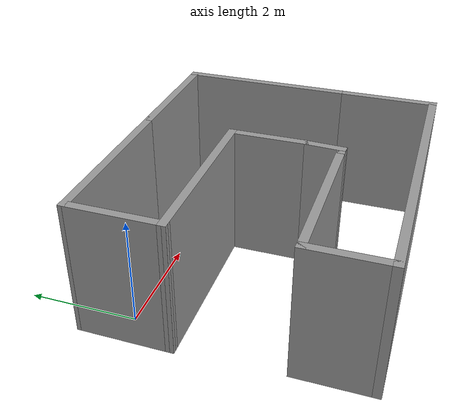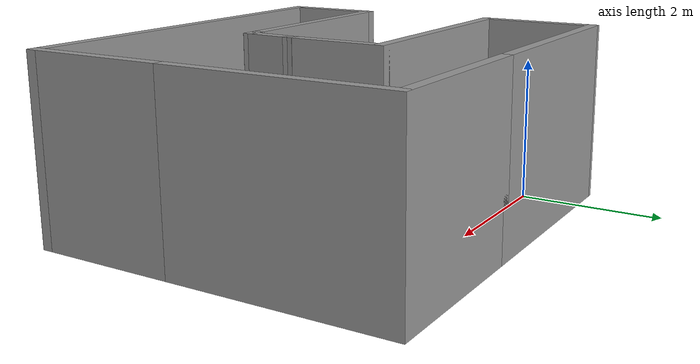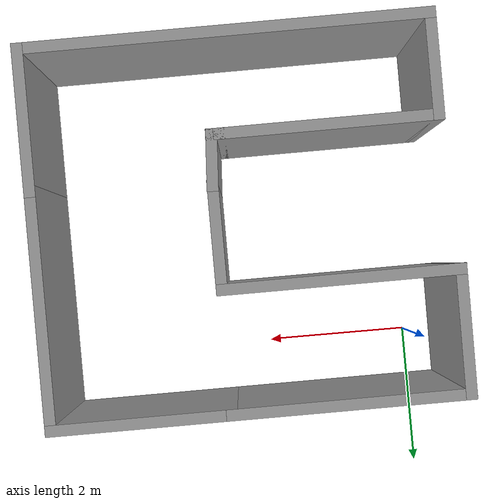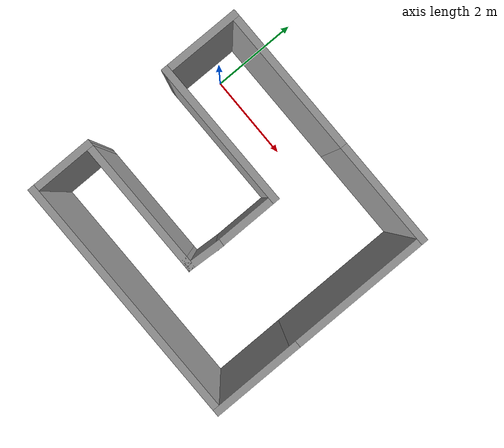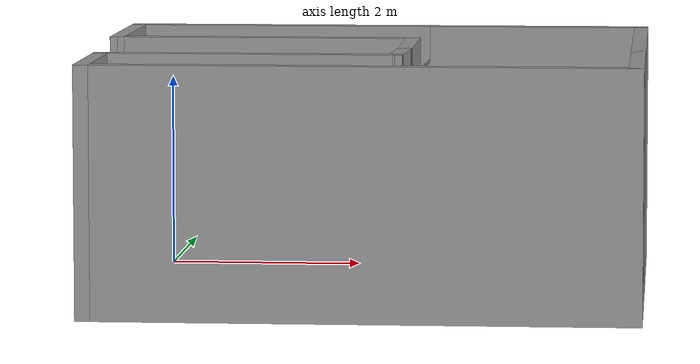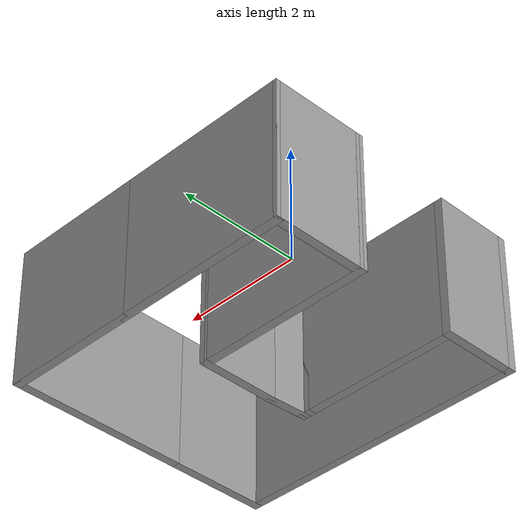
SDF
<?xml version='1.0'?>
<sdf version='1.6'>
  <model name='Untitled'>
    <pose frame=''>2.25977 -1.72477 0 0 -0 0</pose>
    <link name='Wall_0'>
      <collision name='Wall_0_Collision'>
        <geometry>
          <box>
            <size>3.25 0.15 2.5</size>
          </box>
        </geometry>
        <pose frame=''>0 0 1.25 0 -0 0</pose>
      </collision>
      <visual name='Wall_0_Visual'>
        <pose frame=''>0 0 1.25 0 -0 0</pose>
        <geometry>
          <box>
            <size>3.25 0.15 2.5</size>
          </box>
        </geometry>
        <material>
          <script>
            <uri>file://media/materials/scripts/gazebo.material</uri>
            <name>Gazebo/Grey</name>
          </script>
          <ambient>1 1 1 1</ambient>
        </material>
        <meta>
          <layer>0</layer>
        </meta>
      </visual>
      <pose frame=''>-1.17977 0.854769 0 0 -0 0</pose>
    </link>
    <link name='Wall_10'>
      <collision name='Wall_10_Collision'>
        <geometry>
          <box>
            <size>1.77003 0.15 2.5</size>
          </box>
        </geometry>
        <pose frame=''>0 0 1.25 0 -0 0</pose>
      </collision>
      <visual name='Wall_10_Visual'>
        <pose frame=''>0 0 1.25 0 -0 0</pose>
        <geometry>
          <box>
            <size>1.77003 0.15 2.5</size>
          </box>
        </geometry>
        <material>
          <script>
            <uri>file://media/materials/scripts/gazebo.material</uri>
            <name>Gazebo/Grey</name>
          </script>
          <ambient>1 1 1 1</ambient>
        </material>
        <meta>
          <layer>0</layer>
        </meta>
      </visual>
      <pose frame=''>-2.72477 1.66477 0 0 -0 -1.57697</pose>
    </link>
    <link name='Wall_12'>
      <collision name='Wall_12_Collision'>
        <geometry>
          <box>
            <size>2 0.15 2.5</size>
          </box>
        </geometry>
        <pose frame=''>0 0 1.25 0 -0 0</pose>
      </collision>
      <visual name='Wall_12_Visual'>
        <pose frame=''>0 0 1.25 0 -0 0</pose>
        <geometry>
          <box>
            <size>2 0.15 2.5</size>
          </box>
        </geometry>
        <material>
          <script>
            <uri>file://media/materials/scripts/gazebo.material</uri>
            <name>Gazebo/Grey</name>
          </script>
          <ambient>1 1 1 1</ambient>
        </material>
        <meta>
          <layer>0</layer>
        </meta>
      </visual>
      <pose frame=''>2.73023 -1.55023 0 0 -0 -1.5708</pose>
    </link>
    <link name='Wall_13'>
      <collision name='Wall_13_Collision'>
        <geometry>
          <box>
            <size>5.5 0.15 2.5</size>
          </box>
        </geometry>
        <pose frame=''>0 0 1.25 0 -0 0</pose>
      </collision>
      <visual name='Wall_13_Visual'>
        <pose frame=''>0 0 1.25 0 -0 0</pose>
        <geometry>
          <box>
            <size>5.5 0.15 2.5</size>
          </box>
        </geometry>
        <material>
          <script>
            <uri>file://media/materials/scripts/gazebo.material</uri>
            <name>Gazebo/Grey</name>
          </script>
          <ambient>1 1 1 1</ambient>
        </material>
        <meta>
          <layer>0</layer>
        </meta>
      </visual>
      <pose frame=''>0.055231 -2.47523 0 0 -0 3.14159</pose>
    </link>
    <link name='Wall_14'>
      <collision name='Wall_14_Collision'>
        <geometry>
          <box>
            <size>1.46958 0.15 2.5</size>
          </box>
        </geometry>
        <pose frame=''>0 0 1.25 0 -0 0</pose>
      </collision>
      <visual name='Wall_14_Visual'>
        <pose frame=''>0 0 1.25 0 -0 0</pose>
        <geometry>
          <box>
            <size>1.46958 0.15 2.5</size>
          </box>
        </geometry>
        <material>
          <script>
            <uri>file://media/materials/scripts/gazebo.material</uri>
            <name>Gazebo/Grey</name>
          </script>
          <ambient>1 1 1 1</ambient>
        </material>
        <meta>
          <layer>0</layer>
        </meta>
      </visual>
      <pose frame=''>-2.61977 -1.81544 0 0 -0 1.5708</pose>
    </link>
    <link name='Wall_15'>
      <collision name='Wall_15_Collision'>
        <geometry>
          <box>
            <size>3 0.15 2.5</size>
          </box>
        </geometry>
        <pose frame=''>0 0 1.25 0 -0 0</pose>
      </collision>
      <visual name='Wall_15_Visual'>
        <pose frame=''>0 0 1.25 0 -0 0</pose>
        <geometry>
          <box>
            <size>3 0.15 2.5</size>
          </box>
        </geometry>
        <material>
          <script>
            <uri>file://media/materials/scripts/gazebo.material</uri>
            <name>Gazebo/Grey</name>
          </script>
          <ambient>1 1 1 1</ambient>
        </material>
        <meta>
          <layer>0</layer>
        </meta>
      </visual>
      <pose frame=''>-1.19477 -1.15565 0 0 -0 0</pose>
    </link>
    <link name='Wall_18'>
      <collision name='Wall_18_Collision'>
        <geometry>
          <box>
            <size>0.25 0.15 2.5</size>
          </box>
        </geometry>
        <pose frame=''>0 0 1.25 0 -0 0</pose>
      </collision>
      <visual name='Wall_18_Visual'>
        <pose frame=''>0 0 1.25 0 -0 0</pose>
        <geometry>
          <box>
            <size>0.25 0.15 2.5</size>
          </box>
        </geometry>
        <material>
          <script>
            <uri>file://media/materials/scripts/gazebo.material</uri>
            <name>Gazebo/Grey</name>
          </script>
          <ambient>1 1 1 1</ambient>
        </material>
        <meta>
          <layer>0</layer>
        </meta>
      </visual>
      <pose frame=''>0.280231 -1.15565 0 0 -0 0</pose>
    </link>
    <link name='Wall_19'>
      <collision name='Wall_19_Collision'>
        <geometry>
          <box>
            <size>0.811628 0.15 2.5</size>
          </box>
        </geometry>
        <pose frame=''>0 0 1.25 0 -0 0</pose>
      </collision>
      <visual name='Wall_19_Visual'>
        <pose frame=''>0 0 1.25 0 -0 0</pose>
        <geometry>
          <box>
            <size>0.811628 0.15 2.5</size>
          </box>
        </geometry>
        <material>
          <script>
            <uri>file://media/materials/scripts/gazebo.material</uri>
            <name>Gazebo/Grey</name>
          </script>
          <ambient>1 1 1 1</ambient>
        </material>
        <meta>
          <layer>0</layer>
        </meta>
      </visual>
      <pose frame=''>0.350231 -0.82544 0 0 -0 1.5103</pose>
    </link>
    <link name='Wall_3'>
      <collision name='Wall_3_Collision'>
        <geometry>
          <box>
            <size>3.25 0.15 2.5</size>
          </box>
        </geometry>
        <pose frame=''>0 0 1.25 0 -0 0</pose>
      </collision>
      <visual name='Wall_3_Visual'>
        <pose frame=''>0 0 1.25 0 -0 0</pose>
        <geometry>
          <box>
            <size>3.25 0.15 2.5</size>
          </box>
        </geometry>
        <material>
          <script>
            <uri>file://media/materials/scripts/gazebo.material</uri>
            <name>Gazebo/Grey</name>
          </script>
          <ambient>1 1 1 1</ambient>
        </material>
        <meta>
          <layer>0</layer>
        </meta>
      </visual>
      <pose frame=''>-1.16977 2.47477 0 0 -0 0</pose>
    </link>
    <link name='Wall_5'>
      <collision name='Wall_5_Collision'>
        <geometry>
          <box>
            <size>2.5 0.15 2.5</size>
          </box>
        </geometry>
        <pose frame=''>0 0 1.25 0 -0 0</pose>
      </collision>
      <visual name='Wall_5_Visual'>
        <pose frame=''>0 0 1.25 0 -0 0</pose>
        <geometry>
          <box>
            <size>2.5 0.15 2.5</size>
          </box>
        </geometry>
        <material>
          <script>
            <uri>file://media/materials/scripts/gazebo.material</uri>
            <name>Gazebo/Grey</name>
          </script>
          <ambient>1 1 1 1</ambient>
        </material>
        <meta>
          <layer>0</layer>
        </meta>
      </visual>
      <pose frame=''>1.55523 2.47477 0 0 -0 0</pose>
    </link>
    <link name='Wall_6'>
      <collision name='Wall_6_Collision'>
        <geometry>
          <box>
            <size>3.25 0.15 2.5</size>
          </box>
        </geometry>
        <pose frame=''>0 0 1.25 0 -0 0</pose>
      </collision>
      <visual name='Wall_6_Visual'>
        <pose frame=''>0 0 1.25 0 -0 0</pose>
        <geometry>
          <box>
            <size>3.25 0.15 2.5</size>
          </box>
        </geometry>
        <material>
          <script>
            <uri>file://media/materials/scripts/gazebo.material</uri>
            <name>Gazebo/Grey</name>
          </script>
          <ambient>1 1 1 1</ambient>
        </material>
        <meta>
          <layer>0</layer>
        </meta>
      </visual>
      <pose frame=''>2.73023 0.924769 0 0 -0 -1.5708</pose>
    </link>
    <link name='Wall_8'>
      <collision name='Wall_8_Collision'>
        <geometry>
          <box>
            <size>1.5 0.15 2.5</size>
          </box>
        </geometry>
        <pose frame=''>0 0 1.25 0 -0 0</pose>
      </collision>
      <visual name='Wall_8_Visual'>
        <pose frame=''>0 0 1.25 0 -0 0</pose>
        <geometry>
          <box>
            <size>1.5 0.15 2.5</size>
          </box>
        </geometry>
        <material>
          <script>
            <uri>file://media/materials/scripts/gazebo.material</uri>
            <name>Gazebo/Grey</name>
          </script>
          <ambient>1 1 1 1</ambient>
        </material>
        <meta>
          <layer>0</layer>
        </meta>
      </visual>
      <pose frame=''>0.370231 0.179769 0 0 -0 -1.5708</pose>
    </link>
    <static>1</static>
  </model>
</sdf>
